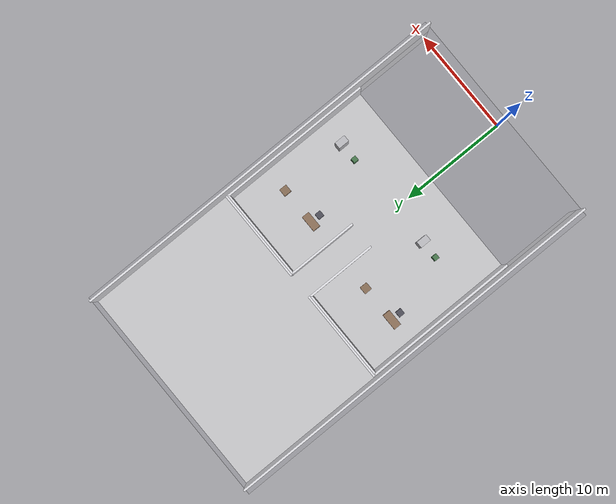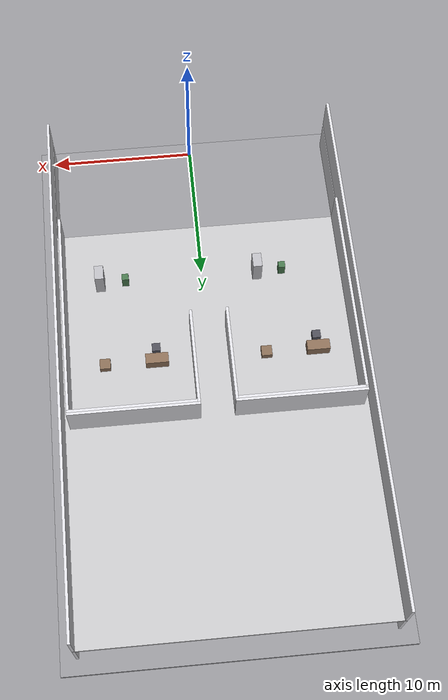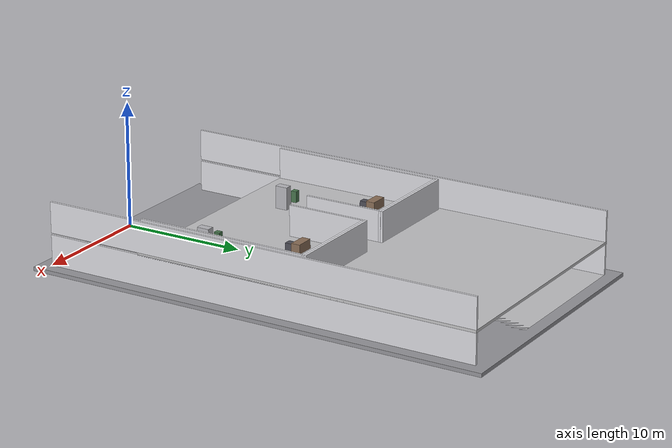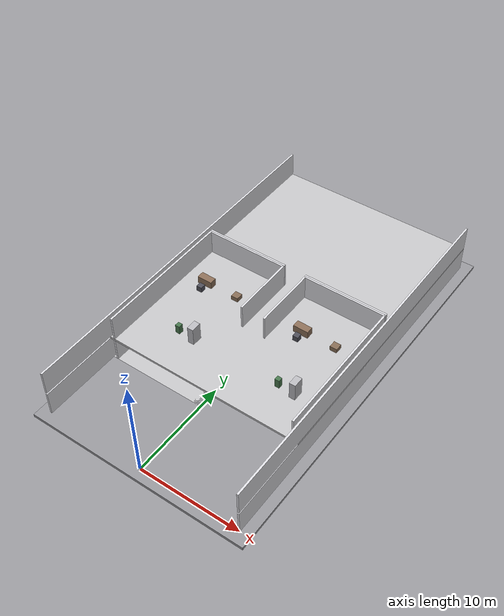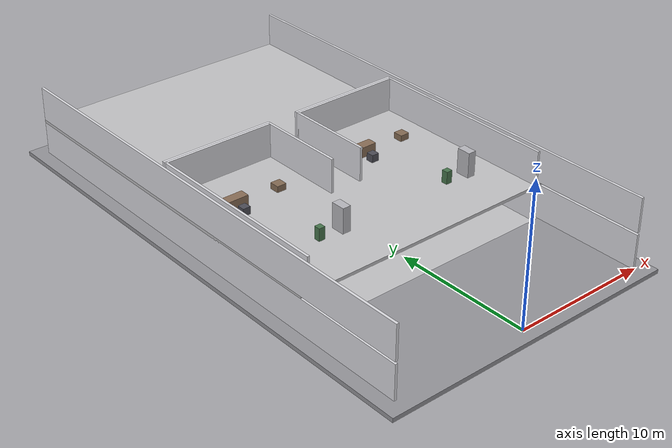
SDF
<sdf version="1.7">
 <model name="generated_building">
  <static>true</static>
  <link name="foundation">
   <pose>0.0000 18.0000 -0.1500 0.0000 0.0000 0.0000</pose>
   <collision name="foundation_collision">
    <geometry><box><size>22.0000 38.0000 0.3000</size></box></geometry>
   </collision>
   <visual name="foundation_visual">
    <geometry><box><size>22.0000 38.0000 0.3000</size></box></geometry>
    <material><ambient>0.58 0.58 0.60 1</ambient><diffuse>0.58 0.58 0.60 1</diffuse></material>
   </visual>
   <gravity>false</gravity>
  </link>
  <link name="slab_floor_0_0">
   <pose>0.0000 21.9250 -0.1100 0.0000 0.0000 0.0000</pose>
   <collision name="slab_floor_0_0_collision">
    <geometry><box><size>20.0000 28.1500 0.2200</size></box></geometry>
   </collision>
   <visual name="slab_floor_0_0_visual">
    <geometry><box><size>20.0000 28.1500 0.2200</size></box></geometry>
    <material><ambient>0.76 0.76 0.77 1</ambient><diffuse>0.76 0.76 0.77 1</diffuse></material>
   </visual>
   <gravity>false</gravity>
  </link>
  <link name="exterior_west_floor_0">
   <pose>-9.9100 18.0000 1.2250 0.0000 0.0000 0.0000</pose>
   <collision name="exterior_west_floor_0_collision">
    <geometry><box><size>0.1800 36.0000 2.4500</size></box></geometry>
   </collision>
   <visual name="exterior_west_floor_0_visual">
    <geometry><box><size>0.1800 36.0000 2.4500</size></box></geometry>
    <material><ambient>0.86 0.86 0.88 1</ambient><diffuse>0.86 0.86 0.88 1</diffuse></material>
   </visual>
   <gravity>false</gravity>
  </link>
  <link name="exterior_east_floor_0">
   <pose>9.9100 18.0000 1.2250 0.0000 0.0000 0.0000</pose>
   <collision name="exterior_east_floor_0_collision">
    <geometry><box><size>0.1800 36.0000 2.4500</size></box></geometry>
   </collision>
   <visual name="exterior_east_floor_0_visual">
    <geometry><box><size>0.1800 36.0000 2.4500</size></box></geometry>
    <material><ambient>0.86 0.86 0.88 1</ambient><diffuse>0.86 0.86 0.88 1</diffuse></material>
   </visual>
   <gravity>false</gravity>
  </link>
  <link name="floor_0_room_0_corridor_wall_upper">
   <pose>-1.1900 18.6725 1.2250 0.0000 0.0000 0.0000</pose>
   <collision name="floor_0_room_0_corridor_wall_upper_collision">
    <geometry><box><size>0.1800 6.4150 2.4500</size></box></geometry>
   </collision>
   <visual name="floor_0_room_0_corridor_wall_upper_visual">
    <geometry><box><size>0.1800 6.4150 2.4500</size></box></geometry>
    <material><ambient>0.86 0.86 0.88 1</ambient><diffuse>0.86 0.86 0.88 1</diffuse></material>
   </visual>
   <gravity>false</gravity>
  </link>
  <link name="floor_0_room_0_west_wall">
   <pose>-9.4100 14.8650 1.2250 0.0000 0.0000 0.0000</pose>
   <collision name="floor_0_room_0_west_wall_collision">
    <geometry><box><size>0.1800 14.0300 2.4500</size></box></geometry>
   </collision>
   <visual name="floor_0_room_0_west_wall_visual">
    <geometry><box><size>0.1800 14.0300 2.4500</size></box></geometry>
    <material><ambient>0.86 0.86 0.88 1</ambient><diffuse>0.86 0.86 0.88 1</diffuse></material>
   </visual>
   <gravity>false</gravity>
  </link>
  <link name="floor_0_room_0_north_wall">
   <pose>-5.3000 21.7900 1.2250 0.0000 0.0000 0.0000</pose>
   <collision name="floor_0_room_0_north_wall_collision">
    <geometry><box><size>8.4000 0.1800 2.4500</size></box></geometry>
   </collision>
   <visual name="floor_0_room_0_north_wall_visual">
    <geometry><box><size>8.4000 0.1800 2.4500</size></box></geometry>
    <material><ambient>0.86 0.86 0.88 1</ambient><diffuse>0.86 0.86 0.88 1</diffuse></material>
   </visual>
   <gravity>false</gravity>
  </link>
  <link name="floor_0_room_1_corridor_wall_upper">
   <pose>1.1900 18.6725 1.2250 0.0000 0.0000 0.0000</pose>
   <collision name="floor_0_room_1_corridor_wall_upper_collision">
    <geometry><box><size>0.1800 6.4150 2.4500</size></box></geometry>
   </collision>
   <visual name="floor_0_room_1_corridor_wall_upper_visual">
    <geometry><box><size>0.1800 6.4150 2.4500</size></box></geometry>
    <material><ambient>0.86 0.86 0.88 1</ambient><diffuse>0.86 0.86 0.88 1</diffuse></material>
   </visual>
   <gravity>false</gravity>
  </link>
  <link name="floor_0_room_1_east_wall">
   <pose>9.4100 14.8650 1.2250 0.0000 0.0000 0.0000</pose>
   <collision name="floor_0_room_1_east_wall_collision">
    <geometry><box><size>0.1800 14.0300 2.4500</size></box></geometry>
   </collision>
   <visual name="floor_0_room_1_east_wall_visual">
    <geometry><box><size>0.1800 14.0300 2.4500</size></box></geometry>
    <material><ambient>0.86 0.86 0.88 1</ambient><diffuse>0.86 0.86 0.88 1</diffuse></material>
   </visual>
   <gravity>false</gravity>
  </link>
  <link name="floor_0_room_1_north_wall">
   <pose>5.3000 21.7900 1.2250 0.0000 0.0000 0.0000</pose>
   <collision name="floor_0_room_1_north_wall_collision">
    <geometry><box><size>8.4000 0.1800 2.4500</size></box></geometry>
   </collision>
   <visual name="floor_0_room_1_north_wall_visual">
    <geometry><box><size>8.4000 0.1800 2.4500</size></box></geometry>
    <material><ambient>0.86 0.86 0.88 1</ambient><diffuse>0.86 0.86 0.88 1</diffuse></material>
   </visual>
   <gravity>false</gravity>
  </link>
  <link name="floor_0_room_2_corridor_wall_lower">
   <pose>-1.1900 25.0875 1.2250 0.0000 0.0000 0.0000</pose>
   <collision name="floor_0_room_2_corridor_wall_lower_collision">
    <geometry><box><size>0.1800 6.4150 2.4500</size></box></geometry>
   </collision>
   <visual name="floor_0_room_2_corridor_wall_lower_visual">
    <geometry><box><size>0.1800 6.4150 2.4500</size></box></geometry>
    <material><ambient>0.86 0.86 0.88 1</ambient><diffuse>0.86 0.86 0.88 1</diffuse></material>
   </visual>
   <gravity>false</gravity>
  </link>
  <link name="floor_0_room_2_south_wall">
   <pose>-5.3000 21.9700 1.2250 0.0000 0.0000 0.0000</pose>
   <collision name="floor_0_room_2_south_wall_collision">
    <geometry><box><size>8.4000 0.1800 2.4500</size></box></geometry>
   </collision>
   <visual name="floor_0_room_2_south_wall_visual">
    <geometry><box><size>8.4000 0.1800 2.4500</size></box></geometry>
    <material><ambient>0.86 0.86 0.88 1</ambient><diffuse>0.86 0.86 0.88 1</diffuse></material>
   </visual>
   <gravity>false</gravity>
  </link>
  <link name="floor_0_room_3_corridor_wall_lower">
   <pose>1.1900 25.0875 1.2250 0.0000 0.0000 0.0000</pose>
   <collision name="floor_0_room_3_corridor_wall_lower_collision">
    <geometry><box><size>0.1800 6.4150 2.4500</size></box></geometry>
   </collision>
   <visual name="floor_0_room_3_corridor_wall_lower_visual">
    <geometry><box><size>0.1800 6.4150 2.4500</size></box></geometry>
    <material><ambient>0.86 0.86 0.88 1</ambient><diffuse>0.86 0.86 0.88 1</diffuse></material>
   </visual>
   <gravity>false</gravity>
  </link>
  <link name="floor_0_room_3_south_wall">
   <pose>5.3000 21.9700 1.2250 0.0000 0.0000 0.0000</pose>
   <collision name="floor_0_room_3_south_wall_collision">
    <geometry><box><size>8.4000 0.1800 2.4500</size></box></geometry>
   </collision>
   <visual name="floor_0_room_3_south_wall_visual">
    <geometry><box><size>8.4000 0.1800 2.4500</size></box></geometry>
    <material><ambient>0.86 0.86 0.88 1</ambient><diffuse>0.86 0.86 0.88 1</diffuse></material>
   </visual>
   <gravity>false</gravity>
  </link>
  <link name="floor_0_room_0_rack_a">
   <pose>-7.0000 17.9225 0.9000 0.0000 0.0000 0.0000</pose>
   <collision name="floor_0_room_0_rack_a_collision">
    <geometry><box><size>0.8000 1.6000 1.8000</size></box></geometry>
   </collision>
   <visual name="floor_0_room_0_rack_a_visual">
    <geometry><box><size>0.8000 1.6000 1.8000</size></box></geometry>
    <material><ambient>0.56 0.57 0.60 1</ambient><diffuse>0.56 0.57 0.60 1</diffuse></material>
   </visual>
   <gravity>false</gravity>
  </link>
  <link name="floor_0_room_0_rack_b">
   <pose>-3.6000 17.9225 0.9000 0.0000 0.0000 0.0000</pose>
   <collision name="floor_0_room_0_rack_b_collision">
    <geometry><box><size>0.8000 1.6000 1.8000</size></box></geometry>
   </collision>
   <visual name="floor_0_room_0_rack_b_visual">
    <geometry><box><size>0.8000 1.6000 1.8000</size></box></geometry>
    <material><ambient>0.56 0.57 0.60 1</ambient><diffuse>0.56 0.57 0.60 1</diffuse></material>
   </visual>
   <gravity>false</gravity>
  </link>
  <link name="floor_0_room_1_desk">
   <pose>3.6000 17.9225 0.4500 0.0000 0.0000 0.0000</pose>
   <collision name="floor_0_room_1_desk_collision">
    <geometry><box><size>1.5000 0.7000 0.7500</size></box></geometry>
   </collision>
   <visual name="floor_0_room_1_desk_visual">
    <geometry><box><size>1.5000 0.7000 0.7500</size></box></geometry>
    <material><ambient>0.54 0.43 0.34 1</ambient><diffuse>0.54 0.43 0.34 1</diffuse></material>
   </visual>
   <gravity>false</gravity>
  </link>
  <link name="floor_0_room_1_chair">
   <pose>3.6000 17.0225 0.2800 0.0000 0.0000 0.0000</pose>
   <collision name="floor_0_room_1_chair_collision">
    <geometry><box><size>0.5500 0.5500 0.5500</size></box></geometry>
   </collision>
   <visual name="floor_0_room_1_chair_visual">
    <geometry><box><size>0.5500 0.5500 0.5500</size></box></geometry>
    <material><ambient>0.30 0.30 0.34 1</ambient><diffuse>0.30 0.30 0.34 1</diffuse></material>
   </visual>
   <gravity>false</gravity>
  </link>
  <link name="floor_0_room_1_side_table">
   <pose>7.0000 17.9225 0.3200 0.0000 0.0000 0.0000</pose>
   <collision name="floor_0_room_1_side_table_collision">
    <geometry><box><size>0.7000 0.7000 0.4500</size></box></geometry>
   </collision>
   <visual name="floor_0_room_1_side_table_visual">
    <geometry><box><size>0.7000 0.7000 0.4500</size></box></geometry>
    <material><ambient>0.52 0.42 0.33 1</ambient><diffuse>0.52 0.42 0.33 1</diffuse></material>
   </visual>
   <gravity>false</gravity>
  </link>
  <link name="slab_floor_1_0">
   <pose>0.0000 21.9250 2.4900 0.0000 0.0000 0.0000</pose>
   <collision name="slab_floor_1_0_collision">
    <geometry><box><size>20.0000 28.1500 0.2200</size></box></geometry>
   </collision>
   <visual name="slab_floor_1_0_visual">
    <geometry><box><size>20.0000 28.1500 0.2200</size></box></geometry>
    <material><ambient>0.76 0.76 0.77 1</ambient><diffuse>0.76 0.76 0.77 1</diffuse></material>
   </visual>
   <gravity>false</gravity>
  </link>
  <link name="exterior_west_floor_1">
   <pose>-9.9100 18.0000 3.8250 0.0000 0.0000 0.0000</pose>
   <collision name="exterior_west_floor_1_collision">
    <geometry><box><size>0.1800 36.0000 2.4500</size></box></geometry>
   </collision>
   <visual name="exterior_west_floor_1_visual">
    <geometry><box><size>0.1800 36.0000 2.4500</size></box></geometry>
    <material><ambient>0.86 0.86 0.88 1</ambient><diffuse>0.86 0.86 0.88 1</diffuse></material>
   </visual>
   <gravity>false</gravity>
  </link>
  <link name="exterior_east_floor_1">
   <pose>9.9100 18.0000 3.8250 0.0000 0.0000 0.0000</pose>
   <collision name="exterior_east_floor_1_collision">
    <geometry><box><size>0.1800 36.0000 2.4500</size></box></geometry>
   </collision>
   <visual name="exterior_east_floor_1_visual">
    <geometry><box><size>0.1800 36.0000 2.4500</size></box></geometry>
    <material><ambient>0.86 0.86 0.88 1</ambient><diffuse>0.86 0.86 0.88 1</diffuse></material>
   </visual>
   <gravity>false</gravity>
  </link>
  <link name="floor_1_room_0_corridor_wall_upper">
   <pose>-1.1900 18.6725 3.8250 0.0000 0.0000 0.0000</pose>
   <collision name="floor_1_room_0_corridor_wall_upper_collision">
    <geometry><box><size>0.1800 6.4150 2.4500</size></box></geometry>
   </collision>
   <visual name="floor_1_room_0_corridor_wall_upper_visual">
    <geometry><box><size>0.1800 6.4150 2.4500</size></box></geometry>
    <material><ambient>0.86 0.86 0.88 1</ambient><diffuse>0.86 0.86 0.88 1</diffuse></material>
   </visual>
   <gravity>false</gravity>
  </link>
  <link name="floor_1_room_0_west_wall">
   <pose>-9.4100 14.8650 3.8250 0.0000 0.0000 0.0000</pose>
   <collision name="floor_1_room_0_west_wall_collision">
    <geometry><box><size>0.1800 14.0300 2.4500</size></box></geometry>
   </collision>
   <visual name="floor_1_room_0_west_wall_visual">
    <geometry><box><size>0.1800 14.0300 2.4500</size></box></geometry>
    <material><ambient>0.86 0.86 0.88 1</ambient><diffuse>0.86 0.86 0.88 1</diffuse></material>
   </visual>
   <gravity>false</gravity>
  </link>
  <link name="floor_1_room_0_north_wall">
   <pose>-5.3000 21.7900 3.8250 0.0000 0.0000 0.0000</pose>
   <collision name="floor_1_room_0_north_wall_collision">
    <geometry><box><size>8.4000 0.1800 2.4500</size></box></geometry>
   </collision>
   <visual name="floor_1_room_0_north_wall_visual">
    <geometry><box><size>8.4000 0.1800 2.4500</size></box></geometry>
    <material><ambient>0.86 0.86 0.88 1</ambient><diffuse>0.86 0.86 0.88 1</diffuse></material>
   </visual>
   <gravity>false</gravity>
  </link>
  <link name="floor_1_room_1_corridor_wall_upper">
   <pose>1.1900 18.6725 3.8250 0.0000 0.0000 0.0000</pose>
   <collision name="floor_1_room_1_corridor_wall_upper_collision">
    <geometry><box><size>0.1800 6.4150 2.4500</size></box></geometry>
   </collision>
   <visual name="floor_1_room_1_corridor_wall_upper_visual">
    <geometry><box><size>0.1800 6.4150 2.4500</size></box></geometry>
    <material><ambient>0.86 0.86 0.88 1</ambient><diffuse>0.86 0.86 0.88 1</diffuse></material>
   </visual>
   <gravity>false</gravity>
  </link>
  <link name="floor_1_room_1_east_wall">
   <pose>9.4100 14.8650 3.8250 0.0000 0.0000 0.0000</pose>
   <collision name="floor_1_room_1_east_wall_collision">
    <geometry><box><size>0.1800 14.0300 2.4500</size></box></geometry>
   </collision>
   <visual name="floor_1_room_1_east_wall_visual">
    <geometry><box><size>0.1800 14.0300 2.4500</size></box></geometry>
    <material><ambient>0.86 0.86 0.88 1</ambient><diffuse>0.86 0.86 0.88 1</diffuse></material>
   </visual>
   <gravity>false</gravity>
  </link>
  <link name="floor_1_room_1_north_wall">
   <pose>5.3000 21.7900 3.8250 0.0000 0.0000 0.0000</pose>
   <collision name="floor_1_room_1_north_wall_collision">
    <geometry><box><size>8.4000 0.1800 2.4500</size></box></geometry>
   </collision>
   <visual name="floor_1_room_1_north_wall_visual">
    <geometry><box><size>8.4000 0.1800 2.4500</size></box></geometry>
    <material><ambient>0.86 0.86 0.88 1</ambient><diffuse>0.86 0.86 0.88 1</diffuse></material>
   </visual>
   <gravity>false</gravity>
  </link>
  <link name="floor_1_room_2_south_wall">
   <pose>-5.3000 21.9700 3.8250 0.0000 0.0000 0.0000</pose>
   <collision name="floor_1_room_2_south_wall_collision">
    <geometry><box><size>8.4000 0.1800 2.4500</size></box></geometry>
   </collision>
   <visual name="floor_1_room_2_south_wall_visual">
    <geometry><box><size>8.4000 0.1800 2.4500</size></box></geometry>
    <material><ambient>0.86 0.86 0.88 1</ambient><diffuse>0.86 0.86 0.88 1</diffuse></material>
   </visual>
   <gravity>false</gravity>
  </link>
  <link name="floor_1_room_3_south_wall">
   <pose>5.3000 21.9700 3.8250 0.0000 0.0000 0.0000</pose>
   <collision name="floor_1_room_3_south_wall_collision">
    <geometry><box><size>8.4000 0.1800 2.4500</size></box></geometry>
   </collision>
   <visual name="floor_1_room_3_south_wall_visual">
    <geometry><box><size>8.4000 0.1800 2.4500</size></box></geometry>
    <material><ambient>0.86 0.86 0.88 1</ambient><diffuse>0.86 0.86 0.88 1</diffuse></material>
   </visual>
   <gravity>false</gravity>
  </link>
  <link name="floor_1_room_0_desk">
   <pose>-7.0000 17.9225 3.0500 0.0000 0.0000 0.0000</pose>
   <collision name="floor_1_room_0_desk_collision">
    <geometry><box><size>1.5000 0.7000 0.7500</size></box></geometry>
   </collision>
   <visual name="floor_1_room_0_desk_visual">
    <geometry><box><size>1.5000 0.7000 0.7500</size></box></geometry>
    <material><ambient>0.54 0.43 0.34 1</ambient><diffuse>0.54 0.43 0.34 1</diffuse></material>
   </visual>
   <gravity>false</gravity>
  </link>
  <link name="floor_1_room_0_chair">
   <pose>-7.0000 17.0225 2.8800 0.0000 0.0000 0.0000</pose>
   <collision name="floor_1_room_0_chair_collision">
    <geometry><box><size>0.5500 0.5500 0.5500</size></box></geometry>
   </collision>
   <visual name="floor_1_room_0_chair_visual">
    <geometry><box><size>0.5500 0.5500 0.5500</size></box></geometry>
    <material><ambient>0.30 0.30 0.34 1</ambient><diffuse>0.30 0.30 0.34 1</diffuse></material>
   </visual>
   <gravity>false</gravity>
  </link>
  <link name="floor_1_room_0_cabinet">
   <pose>-3.6000 11.8075 3.5000 0.0000 0.0000 0.0000</pose>
   <collision name="floor_1_room_0_cabinet_collision">
    <geometry><box><size>0.6000 1.0000 1.8000</size></box></geometry>
   </collision>
   <visual name="floor_1_room_0_cabinet_visual">
    <geometry><box><size>0.6000 1.0000 1.8000</size></box></geometry>
    <material><ambient>0.72 0.72 0.74 1</ambient><diffuse>0.72 0.72 0.74 1</diffuse></material>
   </visual>
   <gravity>false</gravity>
  </link>
  <link name="floor_1_room_0_side_table">
   <pose>-3.6000 17.9225 2.9200 0.0000 0.0000 0.0000</pose>
   <collision name="floor_1_room_0_side_table_collision">
    <geometry><box><size>0.7000 0.7000 0.4500</size></box></geometry>
   </collision>
   <visual name="floor_1_room_0_side_table_visual">
    <geometry><box><size>0.7000 0.7000 0.4500</size></box></geometry>
    <material><ambient>0.52 0.42 0.33 1</ambient><diffuse>0.52 0.42 0.33 1</diffuse></material>
   </visual>
   <gravity>false</gravity>
  </link>
  <link name="floor_1_room_0_planter">
   <pose>-5.3000 11.8075 3.0500 0.0000 0.0000 0.0000</pose>
   <collision name="floor_1_room_0_planter_collision">
    <geometry><box><size>0.4500 0.4500 0.9000</size></box></geometry>
   </collision>
   <visual name="floor_1_room_0_planter_visual">
    <geometry><box><size>0.4500 0.4500 0.9000</size></box></geometry>
    <material><ambient>0.28 0.46 0.30 1</ambient><diffuse>0.28 0.46 0.30 1</diffuse></material>
   </visual>
   <gravity>false</gravity>
  </link>
  <link name="floor_1_room_1_desk">
   <pose>3.6000 17.9225 3.0500 0.0000 0.0000 0.0000</pose>
   <collision name="floor_1_room_1_desk_collision">
    <geometry><box><size>1.5000 0.7000 0.7500</size></box></geometry>
   </collision>
   <visual name="floor_1_room_1_desk_visual">
    <geometry><box><size>1.5000 0.7000 0.7500</size></box></geometry>
    <material><ambient>0.54 0.43 0.34 1</ambient><diffuse>0.54 0.43 0.34 1</diffuse></material>
   </visual>
   <gravity>false</gravity>
  </link>
  <link name="floor_1_room_1_chair">
   <pose>3.6000 17.0225 2.8800 0.0000 0.0000 0.0000</pose>
   <collision name="floor_1_room_1_chair_collision">
    <geometry><box><size>0.5500 0.5500 0.5500</size></box></geometry>
   </collision>
   <visual name="floor_1_room_1_chair_visual">
    <geometry><box><size>0.5500 0.5500 0.5500</size></box></geometry>
    <material><ambient>0.30 0.30 0.34 1</ambient><diffuse>0.30 0.30 0.34 1</diffuse></material>
   </visual>
   <gravity>false</gravity>
  </link>
  <link name="floor_1_room_1_cabinet">
   <pose>7.0000 11.8075 3.5000 0.0000 0.0000 0.0000</pose>
   <collision name="floor_1_room_1_cabinet_collision">
    <geometry><box><size>0.6000 1.0000 1.8000</size></box></geometry>
   </collision>
   <visual name="floor_1_room_1_cabinet_visual">
    <geometry><box><size>0.6000 1.0000 1.8000</size></box></geometry>
    <material><ambient>0.72 0.72 0.74 1</ambient><diffuse>0.72 0.72 0.74 1</diffuse></material>
   </visual>
   <gravity>false</gravity>
  </link>
  <link name="floor_1_room_1_side_table">
   <pose>7.0000 17.9225 2.9200 0.0000 0.0000 0.0000</pose>
   <collision name="floor_1_room_1_side_table_collision">
    <geometry><box><size>0.7000 0.7000 0.4500</size></box></geometry>
   </collision>
   <visual name="floor_1_room_1_side_table_visual">
    <geometry><box><size>0.7000 0.7000 0.4500</size></box></geometry>
    <material><ambient>0.52 0.42 0.33 1</ambient><diffuse>0.52 0.42 0.33 1</diffuse></material>
   </visual>
   <gravity>false</gravity>
  </link>
  <link name="floor_1_room_1_planter">
   <pose>5.3000 11.8075 3.0500 0.0000 0.0000 0.0000</pose>
   <collision name="floor_1_room_1_planter_collision">
    <geometry><box><size>0.4500 0.4500 0.9000</size></box></geometry>
   </collision>
   <visual name="floor_1_room_1_planter_visual">
    <geometry><box><size>0.4500 0.4500 0.9000</size></box></geometry>
    <material><ambient>0.28 0.46 0.30 1</ambient><diffuse>0.28 0.46 0.30 1</diffuse></material>
   </visual>
   <gravity>false</gravity>
  </link>
 </model>
</sdf>
